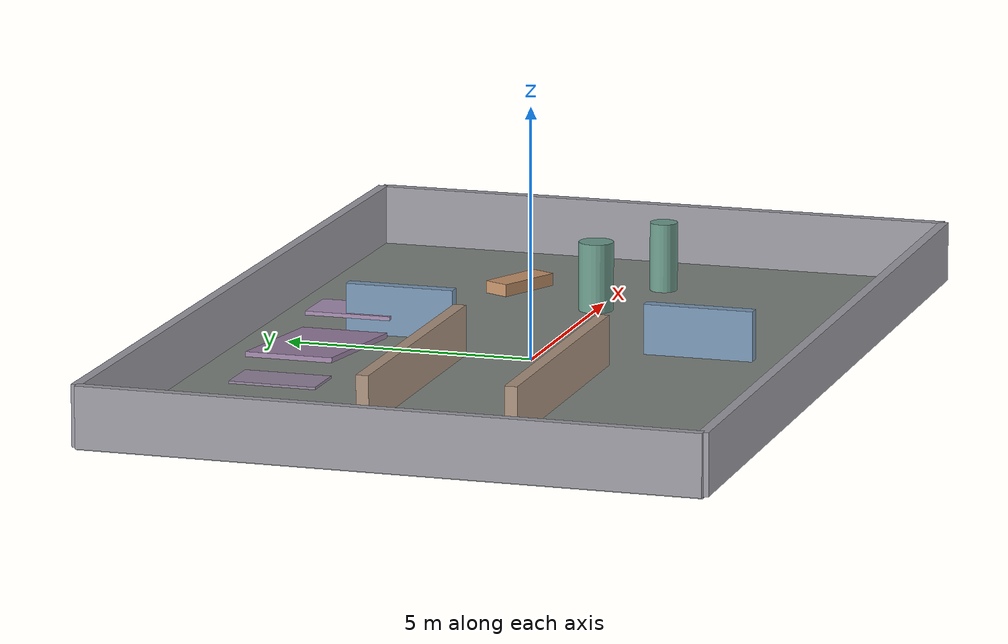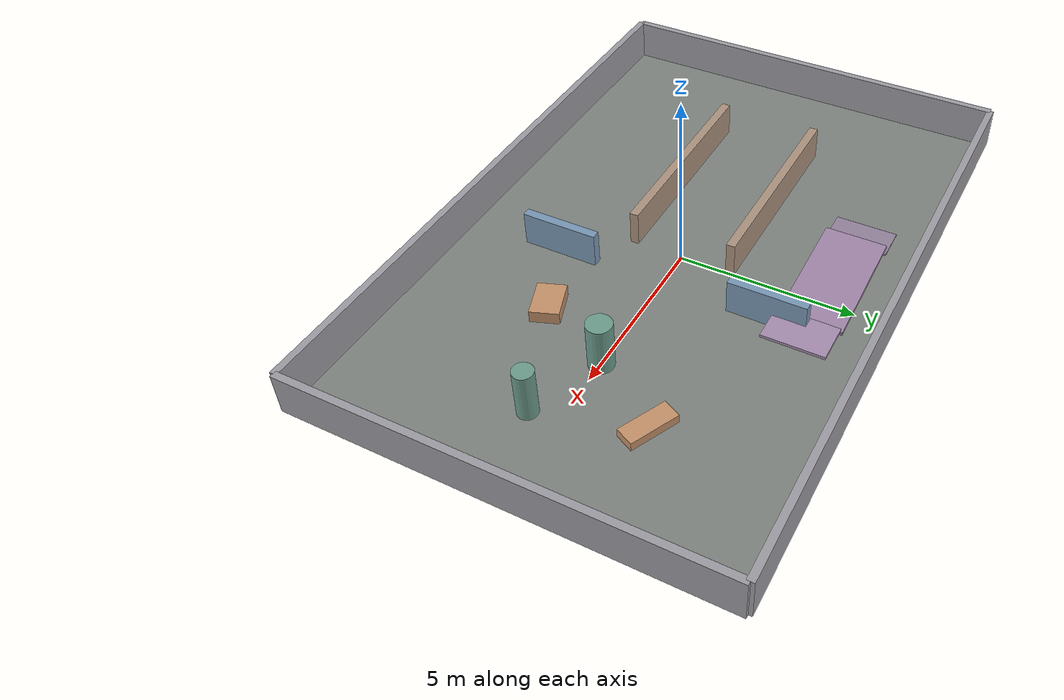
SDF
<?xml version="1.0"?>
<sdf version="1.7">
  <world name="default">
    <light name="sun" type="directional">
      <cast_shadows>true</cast_shadows>
      <pose>0 0 20 0 0 0</pose>
      <diffuse>0.85 0.85 0.85 1</diffuse>
      <specular>0.2 0.2 0.2 1</specular>
      <attenuation>
        <range>100</range>
        <constant>1</constant>
        <linear>0</linear>
        <quadratic>0</quadratic>
      </attenuation>
      <direction>-0.3 0.2 -0.9</direction>
    </light>

    <physics name="default_physics" default="0" type="ode">
      <max_step_size>0.001</max_step_size>
      <real_time_factor>1</real_time_factor>
      <real_time_update_rate>1000</real_time_update_rate>
    </physics>

    <scene>
      <ambient>0.45 0.45 0.45 1</ambient>
      <background>0.72 0.74 0.76 1</background>
      <shadows>true</shadows>
    </scene>

    <gui fullscreen="0">
      <camera name="user_camera">
        <pose>0 -15 11 0 0.62 1.5708</pose>
        <view_controller>orbit</view_controller>
        <projection_type>perspective</projection_type>
      </camera>
    </gui>

    <gravity>0 0 -9.81</gravity>
    <magnetic_field>0 0 0</magnetic_field>
    <atmosphere type="adiabatic"/>

    <model name="nav_test_floor">
      <static>true</static>
      <link name="link">
        <collision name="collision">
          <geometry>
            <box>
              <size>18 12 0.04</size>
            </box>
          </geometry>
          <surface>
            <friction>
              <ode>
                <mu>100</mu>
                <mu2>50</mu2>
              </ode>
            </friction>
          </surface>
        </collision>
        <visual name="visual">
          <geometry>
            <box>
              <size>18 12 0.04</size>
            </box>
          </geometry>
          <material>
            <ambient>0.42 0.43 0.42 1</ambient>
            <diffuse>0.50 0.52 0.50 1</diffuse>
          </material>
        </visual>
      </link>
      <pose>0 0 -0.02 0 0 0</pose>
    </model>

    <model name="wall_north">
      <static>true</static>
      <link name="link">
        <collision name="collision"><geometry><box><size>18 0.2 1.2</size></box></geometry></collision>
        <visual name="visual"><geometry><box><size>18 0.2 1.2</size></box></geometry><material><ambient>0.48 0.48 0.50 1</ambient><diffuse>0.62 0.62 0.65 1</diffuse></material></visual>
      </link>
      <pose>0 6 0.6 0 0 0</pose>
    </model>

    <model name="wall_south">
      <static>true</static>
      <link name="link">
        <collision name="collision"><geometry><box><size>18 0.2 1.2</size></box></geometry></collision>
        <visual name="visual"><geometry><box><size>18 0.2 1.2</size></box></geometry><material><ambient>0.48 0.48 0.50 1</ambient><diffuse>0.62 0.62 0.65 1</diffuse></material></visual>
      </link>
      <pose>0 -6 0.6 0 0 0</pose>
    </model>

    <model name="wall_west">
      <static>true</static>
      <link name="link">
        <collision name="collision"><geometry><box><size>0.2 12 1.2</size></box></geometry></collision>
        <visual name="visual"><geometry><box><size>0.2 12 1.2</size></box></geometry><material><ambient>0.48 0.48 0.50 1</ambient><diffuse>0.62 0.62 0.65 1</diffuse></material></visual>
      </link>
      <pose>-9 0 0.6 0 0 0</pose>
    </model>

    <model name="wall_east">
      <static>true</static>
      <link name="link">
        <collision name="collision"><geometry><box><size>0.2 12 1.2</size></box></geometry></collision>
        <visual name="visual"><geometry><box><size>0.2 12 1.2</size></box></geometry><material><ambient>0.48 0.48 0.50 1</ambient><diffuse>0.62 0.62 0.65 1</diffuse></material></visual>
      </link>
      <pose>9 0 0.6 0 0 0</pose>
    </model>

    <model name="corridor_wall_left">
      <static>true</static>
      <link name="link">
        <collision name="collision"><geometry><box><size>6.0 0.25 1.0</size></box></geometry></collision>
        <visual name="visual"><geometry><box><size>6.0 0.25 1.0</size></box></geometry><material><ambient>0.50 0.44 0.38 1</ambient><diffuse>0.68 0.58 0.50 1</diffuse></material></visual>
      </link>
      <pose>-3.0 -1.45 0.5 0 0 0</pose>
    </model>

    <model name="corridor_wall_right">
      <static>true</static>
      <link name="link">
        <collision name="collision"><geometry><box><size>6.0 0.25 1.0</size></box></geometry></collision>
        <visual name="visual"><geometry><box><size>6.0 0.25 1.0</size></box></geometry><material><ambient>0.50 0.44 0.38 1</ambient><diffuse>0.68 0.58 0.50 1</diffuse></material></visual>
      </link>
      <pose>-3.0 1.45 0.5 0 0 0</pose>
    </model>

    <model name="narrow_gate_top">
      <static>true</static>
      <link name="link">
        <collision name="collision"><geometry><box><size>0.25 2.2 1.0</size></box></geometry></collision>
        <visual name="visual"><geometry><box><size>0.25 2.2 1.0</size></box></geometry><material><ambient>0.38 0.46 0.55 1</ambient><diffuse>0.48 0.60 0.72 1</diffuse></material></visual>
      </link>
      <pose>1.2 3.05 0.5 0 0 0</pose>
    </model>

    <model name="narrow_gate_bottom">
      <static>true</static>
      <link name="link">
        <collision name="collision"><geometry><box><size>0.25 2.2 1.0</size></box></geometry></collision>
        <visual name="visual"><geometry><box><size>0.25 2.2 1.0</size></box></geometry><material><ambient>0.38 0.46 0.55 1</ambient><diffuse>0.48 0.60 0.72 1</diffuse></material></visual>
      </link>
      <pose>1.2 -3.05 0.5 0 0 0</pose>
    </model>

    <model name="low_obstacle_1">
      <static>true</static>
      <link name="link">
        <collision name="collision"><geometry><box><size>1.1 0.8 0.35</size></box></geometry></collision>
        <visual name="visual"><geometry><box><size>1.1 0.8 0.35</size></box></geometry><material><ambient>0.56 0.43 0.32 1</ambient><diffuse>0.78 0.58 0.42 1</diffuse></material></visual>
      </link>
      <pose>3.3 -2.2 0.175 0 0 0.35</pose>
    </model>

    <model name="low_obstacle_2">
      <static>true</static>
      <link name="link">
        <collision name="collision"><geometry><box><size>1.4 0.55 0.25</size></box></geometry></collision>
        <visual name="visual"><geometry><box><size>1.4 0.55 0.25</size></box></geometry><material><ambient>0.56 0.43 0.32 1</ambient><diffuse>0.78 0.58 0.42 1</diffuse></material></visual>
      </link>
      <pose>5.7 2.0 0.125 0 0 -0.45</pose>
    </model>

    <model name="column_1">
      <static>true</static>
      <link name="link">
        <collision name="collision"><geometry><cylinder><radius>0.35</radius><length>1.4</length></cylinder></geometry></collision>
        <visual name="visual"><geometry><cylinder><radius>0.35</radius><length>1.4</length></cylinder></geometry><material><ambient>0.34 0.45 0.42 1</ambient><diffuse>0.43 0.62 0.56 1</diffuse></material></visual>
      </link>
      <pose>4.4 0.0 0.7 0 0 0</pose>
    </model>

    <model name="column_2">
      <static>true</static>
      <link name="link">
        <collision name="collision"><geometry><cylinder><radius>0.28</radius><length>1.4</length></cylinder></geometry></collision>
        <visual name="visual"><geometry><cylinder><radius>0.28</radius><length>1.4</length></cylinder></geometry><material><ambient>0.34 0.45 0.42 1</ambient><diffuse>0.43 0.62 0.56 1</diffuse></material></visual>
      </link>
      <pose>6.5 -0.8 0.7 0 0 0</pose>
    </model>

    <model name="ramp">
      <static>true</static>
      <pose>-0.3 4.1 0 0 0 0</pose>
      <link name="entry_plate">
        <pose>-2.75 0 0.025 0 0 0</pose>
        <collision name="collision">
          <geometry><box><size>0.95 1.75 0.05</size></box></geometry>
          <surface>
            <friction><ode><mu>80</mu><mu2>60</mu2></ode></friction>
          </surface>
        </collision>
        <visual name="visual">
          <geometry><box><size>0.95 1.75 0.05</size></box></geometry>
          <material><ambient>0.43 0.39 0.45 1</ambient><diffuse>0.58 0.52 0.62 1</diffuse></material>
        </visual>
      </link>
      <link name="gentle_slope">
        <pose>-0.55 0 0.205 0 0.085 0</pose>
        <collision name="collision">
          <geometry><box><size>3.4 1.75 0.10</size></box></geometry>
          <surface>
            <friction><ode><mu>90</mu><mu2>70</mu2></ode></friction>
          </surface>
        </collision>
        <visual name="visual">
          <geometry><box><size>3.4 1.75 0.10</size></box></geometry>
          <material><ambient>0.45 0.39 0.47 1</ambient><diffuse>0.62 0.52 0.66 1</diffuse></material>
        </visual>
      </link>
      <link name="top_platform">
        <pose>1.85 0 0.36 0 0 0</pose>
        <collision name="collision">
          <geometry><box><size>1.10 1.75 0.08</size></box></geometry>
          <surface>
            <friction><ode><mu>90</mu><mu2>70</mu2></ode></friction>
          </surface>
        </collision>
        <visual name="visual">
          <geometry><box><size>1.10 1.75 0.08</size></box></geometry>
          <material><ambient>0.48 0.41 0.50 1</ambient><diffuse>0.66 0.56 0.70 1</diffuse></material>
        </visual>
      </link>
    </model>

    <wind/>
  </world>
</sdf>
